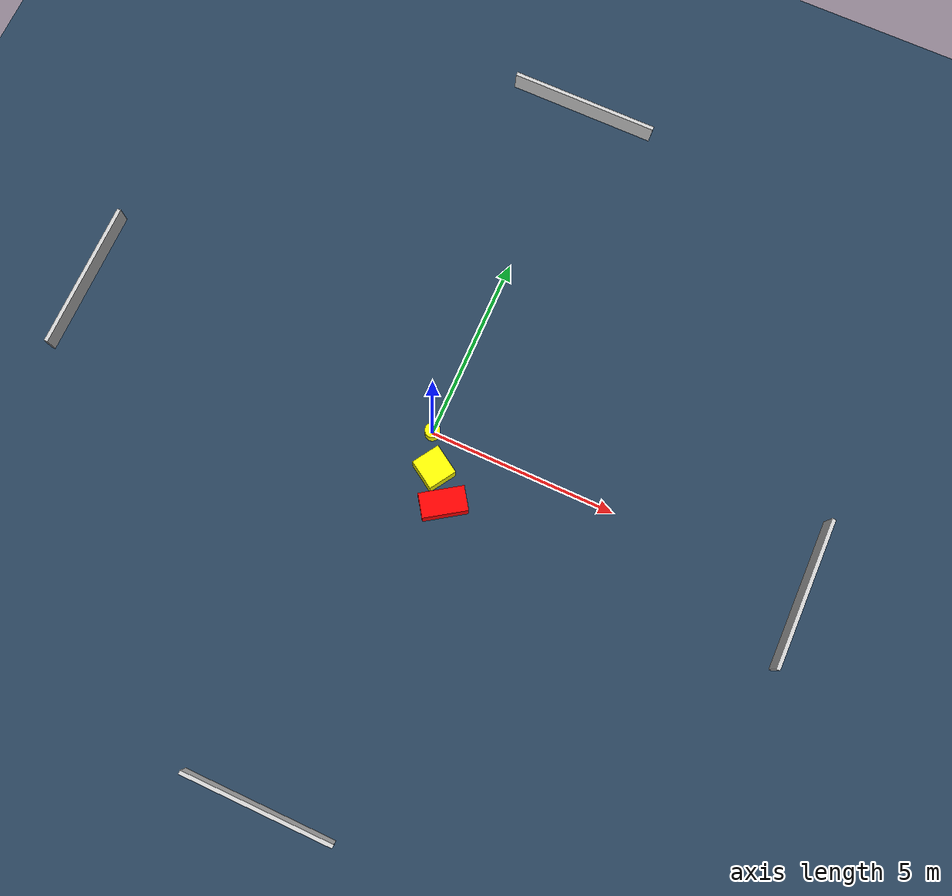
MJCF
<?xml version="1.0" ?>
<mujoco model="generated_environment">
  <option timestep="0.01" integrator="RK4" cone="elliptic"/>
  <default>
    <geom density="1"/>
  </default>
  <asset>
    <texture builtin="gradient" height="3072" name="skybox" rgb1="0.3 0.5 0.7" rgb2="0 0 0" type="skybox" width="512"/>
    <texture builtin="checker" height="300" name="groundplane" rgb1="0.2 0.3 0.4" rgb2="0.1 0.2 0.3" type="2d" width="300"/>
    <material name="groundplane" reflectance="0.2" texrepeat="5 5" texture="groundplane"/>
  </asset>
  <worldbody>
    <light dir="0 0 -1" directional="true" pos="0 0 1.5"/>
    <geom condim="3" friction="0.5 0.005 0.001" material="groundplane" name="floor" pos="0 0 0" size="0 0 0.05" type="plane"/>
    <body name="walls">
      <geom name="wall_1" condim="4" pos="-10.0 0.0 0.3" rgba="0.800000011920929 0.800000011920929 0.800000011920929 1.0" size="0.05 2.0 0.3" type="box"/>
      <geom name="wall_2" condim="4" pos="10.0 0.0 0.3" rgba="0.800000011920929 0.800000011920929 0.800000011920929 1.0" size="0.05 2.0 0.3" type="box"/>
      <geom name="wall_3" condim="4" pos="0.0 -10.0 0.3" rgba="0.800000011920929 0.800000011920929 0.800000011920929 1.0" size="2.0 0.05 0.3" type="box"/>
      <geom name="wall_4" condim="4" pos="0.0 10.0 0.3" rgba="0.800000011920929 0.800000011920929 0.800000011920929 1.0" size="2.0 0.05 0.3" type="box"/>
    </body>
    <body name="robot">
      <joint name="joint_x" type="slide" pos="0 0 0" axis="1 0 0"/>
      <joint name="joint_y" type="slide" pos="0 0 0" axis="0 1 0"/>
      <geom name="robot" type="cylinder" pos="0.0 0.0 0.2" size="0.2 0.2 0.0" mass="5.0" friction="1.0 0.005 0.0001" condim="4" rgba="1.0 1.0 0.0 1.0"/>
    </body>
    <body name="obstacle_1_movable">
      <geom name="obstacle_1_movable" condim="4" pos="0.44030179141303044 -0.8802727099670062 0.3" euler="0 0 237.4228680800212" friction="0.0 0.005 0.001" rgba="1.0 1.0 0.0 1.0" size="0.3854516792469832 0.4038218785130162 0.3" type="box" mass="0.1"/>
      <joint type="free"/>
    </body>
    <body name="obstacle_2_static">
      <geom name="obstacle_2_static" condim="4" pos="1.0122355429321042 -1.591785890394559 0.3" euler="0 0 34.0507060723199" friction="0.0 0.005 0.001" rgba="1.0 0.0 0.0 1.0" size="0.5880445294960797 0.3199074959178927 0.3" type="box"/>
    </body>
  </worldbody>
  <actuator>
    <motor name="actuator_x" joint="joint_x" gear="1" ctrlrange="-1 1"/>
    <motor name="actuator_y" joint="joint_y" gear="1" ctrlrange="-1 1"/>
  </actuator>
</mujoco>
